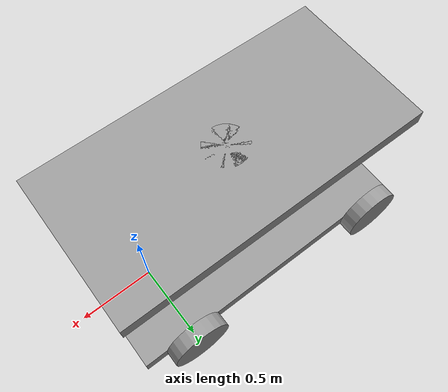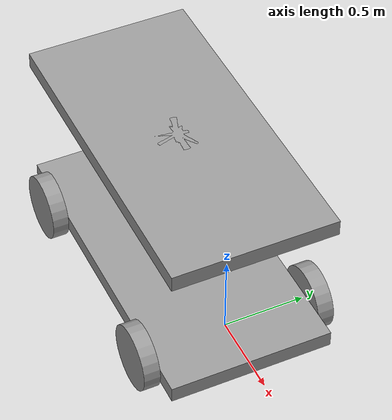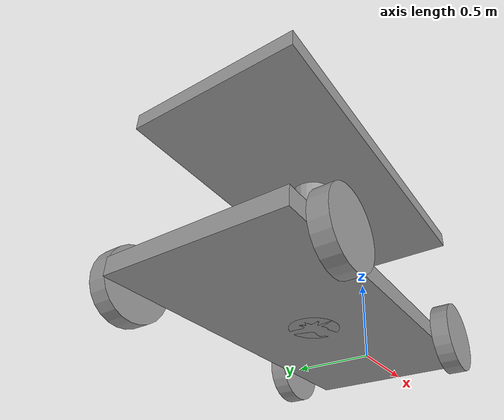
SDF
<?xml version='1.0'?>
<sdf version='1.6'>
  <model name='myRobot'>
    <link name='link_2'>
      <inertial>
        <mass>1</mass>
        <inertia>
          <ixx>0.166667</ixx>
          <ixy>0</ixy>
          <ixz>0</ixz>
          <iyy>0.166667</iyy>
          <iyz>0</iyz>
          <izz>0.166667</izz>
        </inertia>
        <pose frame=''>0 0 0.2 0 -0 0</pose>
      </inertial>
      <pose frame=''>-0.650389 0 0 0 -0 0</pose>
      <gravity>1</gravity>
      <self_collide>0</self_collide>
      <kinematic>0</kinematic>
      <enable_wind>0</enable_wind>
      <visual name='visual'>
        <pose frame=''>0 0 0 0 -0 0</pose>
        <geometry>
          <box>
            <size>2 1 0.1</size>
          </box>
        </geometry>
        <material>
          <lighting>1</lighting>
          <script>
            <uri>file://media/materials/scripts/gazebo.material</uri>
            <name>Gazebo/Grey</name>
          </script>
          <shader type='pixel'>
            <normal_map>__default__</normal_map>
          </shader>
          <ambient>0.3 0.3 0.3 1</ambient>
          <diffuse>0.7 0.7 0.7 1</diffuse>
          <specular>0.01 0.01 0.01 1</specular>
          <emissive>0 0 0 1</emissive>
        </material>
        <transparency>0</transparency>
        <cast_shadows>1</cast_shadows>
      </visual>
      <collision name='collision'>
        <laser_retro>0</laser_retro>
        <max_contacts>10</max_contacts>
        <pose frame=''>0 0 0 0 -0 0</pose>
        <geometry>
          <box>
            <size>2 1 0.1</size>
          </box>
        </geometry>
        <surface>
          <friction>
            <ode>
              <mu>1</mu>
              <mu2>1</mu2>
              <fdir1>0 0 0</fdir1>
              <slip1>0</slip1>
              <slip2>0</slip2>
            </ode>
            <torsional>
              <coefficient>1</coefficient>
              <patch_radius>0</patch_radius>
              <surface_radius>0</surface_radius>
              <use_patch_radius>1</use_patch_radius>
              <ode>
                <slip>0</slip>
              </ode>
            </torsional>
          </friction>
          <bounce>
            <restitution_coefficient>0</restitution_coefficient>
            <threshold>1e+06</threshold>
          </bounce>
          <contact>
            <collide_without_contact>0</collide_without_contact>
            <collide_without_contact_bitmask>1</collide_without_contact_bitmask>
            <collide_bitmask>1</collide_bitmask>
            <ode>
              <soft_cfm>0</soft_cfm>
              <soft_erp>0.2</soft_erp>
              <kp>1e+13</kp>
              <kd>1</kd>
              <max_vel>0.01</max_vel>
              <min_depth>0</min_depth>
            </ode>
            <bullet>
              <split_impulse>1</split_impulse>
              <split_impulse_penetration_threshold>-0.01</split_impulse_penetration_threshold>
              <soft_cfm>0</soft_cfm>
              <soft_erp>0.2</soft_erp>
              <kp>1e+13</kp>
              <kd>1</kd>
            </bullet>
          </contact>
        </surface>
      </collision>
    </link>
    <link name='link_2_0'>
      <inertial>
        <mass>1</mass>
        <inertia>
          <ixx>0.145833</ixx>
          <ixy>0</ixy>
          <ixz>0</ixz>
          <iyy>0.145833</iyy>
          <iyz>0</iyz>
          <izz>0.125</izz>
        </inertia>
        <pose frame=''>0 0 0 0 -0 0</pose>
      </inertial>
      <pose frame=''>-0.650389 0 0.45 0 -0 0</pose>
      <gravity>1</gravity>
      <self_collide>0</self_collide>
      <kinematic>0</kinematic>
      <enable_wind>0</enable_wind>
      <visual name='visual'>
        <pose frame=''>0 0 0 0 -0 0</pose>
        <geometry>
          <cylinder>
            <radius>0.14</radius>
            <length>1</length>
          </cylinder>
        </geometry>
        <material>
          <lighting>1</lighting>
          <script>
            <uri>file://media/materials/scripts/gazebo.material</uri>
            <name>Gazebo/Grey</name>
          </script>
          <shader type='pixel'>
            <normal_map>__default__</normal_map>
          </shader>
          <ambient>0.3 0.3 0.3 1</ambient>
          <diffuse>0.7 0.7 0.7 1</diffuse>
          <specular>0.01 0.01 0.01 1</specular>
          <emissive>0 0 0 1</emissive>
        </material>
        <transparency>0</transparency>
        <cast_shadows>1</cast_shadows>
      </visual>
      <collision name='collision'>
        <laser_retro>0</laser_retro>
        <max_contacts>10</max_contacts>
        <pose frame=''>0 0 0 0 -0 0</pose>
        <geometry>
          <cylinder>
            <radius>0.14</radius>
            <length>1</length>
          </cylinder>
        </geometry>
        <surface>
          <friction>
            <ode>
              <mu>1</mu>
              <mu2>1</mu2>
              <fdir1>0 0 0</fdir1>
              <slip1>0</slip1>
              <slip2>0</slip2>
            </ode>
            <torsional>
              <coefficient>1</coefficient>
              <patch_radius>0</patch_radius>
              <surface_radius>0</surface_radius>
              <use_patch_radius>1</use_patch_radius>
              <ode>
                <slip>0</slip>
              </ode>
            </torsional>
          </friction>
          <bounce>
            <restitution_coefficient>0</restitution_coefficient>
            <threshold>1e+06</threshold>
          </bounce>
          <contact>
            <collide_without_contact>0</collide_without_contact>
            <collide_without_contact_bitmask>1</collide_without_contact_bitmask>
            <collide_bitmask>1</collide_bitmask>
            <ode>
              <soft_cfm>0</soft_cfm>
              <soft_erp>0.2</soft_erp>
              <kp>1e+13</kp>
              <kd>1</kd>
              <max_vel>0.01</max_vel>
              <min_depth>0</min_depth>
            </ode>
            <bullet>
              <split_impulse>1</split_impulse>
              <split_impulse_penetration_threshold>-0.01</split_impulse_penetration_threshold>
              <soft_cfm>0</soft_cfm>
              <soft_erp>0.2</soft_erp>
              <kp>1e+13</kp>
              <kd>1</kd>
            </bullet>
          </contact>
        </surface>
      </collision>
    </link>
    <link name='link_2_clone'>
      <inertial>
        <mass>1</mass>
        <inertia>
          <ixx>0.166667</ixx>
          <ixy>0</ixy>
          <ixz>0</ixz>
          <iyy>0.166667</iyy>
          <iyz>0</iyz>
          <izz>0.166667</izz>
        </inertia>
        <pose frame=''>0 0 0.2 0 -0 0</pose>
      </inertial>
      <pose frame=''>-0.650389 0 0.9 0 -0 0</pose>
      <gravity>1</gravity>
      <self_collide>0</self_collide>
      <kinematic>0</kinematic>
      <enable_wind>0</enable_wind>
      <visual name='visual'>
        <pose frame=''>0 0 0 0 -0 0</pose>
        <geometry>
          <box>
            <size>2 1 0.1</size>
          </box>
        </geometry>
        <material>
          <lighting>1</lighting>
          <script>
            <uri>file://media/materials/scripts/gazebo.material</uri>
            <name>Gazebo/Grey</name>
          </script>
          <shader type='pixel'>
            <normal_map>__default__</normal_map>
          </shader>
          <ambient>0.3 0.3 0.3 1</ambient>
          <diffuse>0.7 0.7 0.7 1</diffuse>
          <specular>0.01 0.01 0.01 1</specular>
          <emissive>0 0 0 1</emissive>
        </material>
        <transparency>0</transparency>
        <cast_shadows>1</cast_shadows>
      </visual>
      <collision name='collision'>
        <laser_retro>0</laser_retro>
        <max_contacts>10</max_contacts>
        <pose frame=''>0 0 0 0 -0 0</pose>
        <geometry>
          <box>
            <size>2 1 0.1</size>
          </box>
        </geometry>
        <surface>
          <friction>
            <ode>
              <mu>1</mu>
              <mu2>1</mu2>
              <fdir1>0 0 0</fdir1>
              <slip1>0</slip1>
              <slip2>0</slip2>
            </ode>
            <torsional>
              <coefficient>1</coefficient>
              <patch_radius>0</patch_radius>
              <surface_radius>0</surface_radius>
              <use_patch_radius>1</use_patch_radius>
              <ode>
                <slip>0</slip>
              </ode>
            </torsional>
          </friction>
          <bounce>
            <restitution_coefficient>0</restitution_coefficient>
            <threshold>1e+06</threshold>
          </bounce>
          <contact>
            <collide_without_contact>0</collide_without_contact>
            <collide_without_contact_bitmask>1</collide_without_contact_bitmask>
            <collide_bitmask>1</collide_bitmask>
            <ode>
              <soft_cfm>0</soft_cfm>
              <soft_erp>0.2</soft_erp>
              <kp>1e+13</kp>
              <kd>1</kd>
              <max_vel>0.01</max_vel>
              <min_depth>0</min_depth>
            </ode>
            <bullet>
              <split_impulse>1</split_impulse>
              <split_impulse_penetration_threshold>-0.01</split_impulse_penetration_threshold>
              <soft_cfm>0</soft_cfm>
              <soft_erp>0.2</soft_erp>
              <kp>1e+13</kp>
              <kd>1</kd>
            </bullet>
          </contact>
        </surface>
      </collision>
    </link>
    <link name='link_3'>
      <inertial>
        <mass>1</mass>
        <inertia>
          <ixx>0.145833</ixx>
          <ixy>0</ixy>
          <ixz>0</ixz>
          <iyy>0.145833</iyy>
          <iyz>0</iyz>
          <izz>0.125</izz>
        </inertia>
        <pose frame=''>0 0 0 0 -0 0</pose>
      </inertial>
      <pose frame=''>0 -0.550019 -0 1.5707 -0 0</pose>
      <gravity>1</gravity>
      <self_collide>0</self_collide>
      <kinematic>0</kinematic>
      <enable_wind>0</enable_wind>
      <visual name='visual'>
        <pose frame=''>0 0 0 0 -0 0</pose>
        <geometry>
          <cylinder>
            <radius>0.2</radius>
            <length>0.1</length>
          </cylinder>
        </geometry>
        <material>
          <lighting>1</lighting>
          <script>
            <uri>file://media/materials/scripts/gazebo.material</uri>
            <name>Gazebo/Grey</name>
          </script>
          <shader type='pixel'>
            <normal_map>__default__</normal_map>
          </shader>
          <ambient>0.3 0.3 0.3 1</ambient>
          <diffuse>0.7 0.7 0.7 1</diffuse>
          <specular>0.01 0.01 0.01 1</specular>
          <emissive>0 0 0 1</emissive>
        </material>
        <transparency>0</transparency>
        <cast_shadows>1</cast_shadows>
      </visual>
      <collision name='collision'>
        <laser_retro>0</laser_retro>
        <max_contacts>10</max_contacts>
        <pose frame=''>0 0 0 0 -0 0</pose>
        <geometry>
          <cylinder>
            <radius>0.2</radius>
            <length>0.1</length>
          </cylinder>
        </geometry>
        <surface>
          <friction>
            <ode>
              <mu>1</mu>
              <mu2>1</mu2>
              <fdir1>0 0 0</fdir1>
              <slip1>0</slip1>
              <slip2>0</slip2>
            </ode>
            <torsional>
              <coefficient>1</coefficient>
              <patch_radius>0</patch_radius>
              <surface_radius>0</surface_radius>
              <use_patch_radius>1</use_patch_radius>
              <ode>
                <slip>0</slip>
              </ode>
            </torsional>
          </friction>
          <bounce>
            <restitution_coefficient>0</restitution_coefficient>
            <threshold>1e+06</threshold>
          </bounce>
          <contact>
            <collide_without_contact>0</collide_without_contact>
            <collide_without_contact_bitmask>1</collide_without_contact_bitmask>
            <collide_bitmask>1</collide_bitmask>
            <ode>
              <soft_cfm>0</soft_cfm>
              <soft_erp>0.2</soft_erp>
              <kp>1e+13</kp>
              <kd>1</kd>
              <max_vel>0.01</max_vel>
              <min_depth>0</min_depth>
            </ode>
            <bullet>
              <split_impulse>1</split_impulse>
              <split_impulse_penetration_threshold>-0.01</split_impulse_penetration_threshold>
              <soft_cfm>0</soft_cfm>
              <soft_erp>0.2</soft_erp>
              <kp>1e+13</kp>
              <kd>1</kd>
            </bullet>
          </contact>
        </surface>
      </collision>
    </link>
    <link name='link_3_clone'>
      <inertial>
        <mass>1</mass>
        <inertia>
          <ixx>0.145833</ixx>
          <ixy>0</ixy>
          <ixz>0</ixz>
          <iyy>0.145833</iyy>
          <iyz>0</iyz>
          <izz>0.125</izz>
        </inertia>
        <pose frame=''>0 0 0 0 -0 0</pose>
      </inertial>
      <pose frame=''>0 0.550019 0 1.5707 -0 0</pose>
      <gravity>1</gravity>
      <self_collide>0</self_collide>
      <kinematic>0</kinematic>
      <enable_wind>0</enable_wind>
      <visual name='visual'>
        <pose frame=''>0 0 0 0 -0 0</pose>
        <geometry>
          <cylinder>
            <radius>0.2</radius>
            <length>0.1</length>
          </cylinder>
        </geometry>
        <material>
          <lighting>1</lighting>
          <script>
            <uri>file://media/materials/scripts/gazebo.material</uri>
            <name>Gazebo/Grey</name>
          </script>
          <shader type='pixel'>
            <normal_map>__default__</normal_map>
          </shader>
          <ambient>0.3 0.3 0.3 1</ambient>
          <diffuse>0.7 0.7 0.7 1</diffuse>
          <specular>0.01 0.01 0.01 1</specular>
          <emissive>0 0 0 1</emissive>
        </material>
        <transparency>0</transparency>
        <cast_shadows>1</cast_shadows>
      </visual>
      <collision name='collision'>
        <laser_retro>0</laser_retro>
        <max_contacts>10</max_contacts>
        <pose frame=''>0 0 0 0 -0 0</pose>
        <geometry>
          <cylinder>
            <radius>0.2</radius>
            <length>0.1</length>
          </cylinder>
        </geometry>
        <surface>
          <friction>
            <ode>
              <mu>1</mu>
              <mu2>1</mu2>
              <fdir1>0 0 0</fdir1>
              <slip1>0</slip1>
              <slip2>0</slip2>
            </ode>
            <torsional>
              <coefficient>1</coefficient>
              <patch_radius>0</patch_radius>
              <surface_radius>0</surface_radius>
              <use_patch_radius>1</use_patch_radius>
              <ode>
                <slip>0</slip>
              </ode>
            </torsional>
          </friction>
          <bounce>
            <restitution_coefficient>0</restitution_coefficient>
            <threshold>1e+06</threshold>
          </bounce>
          <contact>
            <collide_without_contact>0</collide_without_contact>
            <collide_without_contact_bitmask>1</collide_without_contact_bitmask>
            <collide_bitmask>1</collide_bitmask>
            <ode>
              <soft_cfm>0</soft_cfm>
              <soft_erp>0.2</soft_erp>
              <kp>1e+13</kp>
              <kd>1</kd>
              <max_vel>0.01</max_vel>
              <min_depth>0</min_depth>
            </ode>
            <bullet>
              <split_impulse>1</split_impulse>
              <split_impulse_penetration_threshold>-0.01</split_impulse_penetration_threshold>
              <soft_cfm>0</soft_cfm>
              <soft_erp>0.2</soft_erp>
              <kp>1e+13</kp>
              <kd>1</kd>
            </bullet>
          </contact>
        </surface>
      </collision>
    </link>
    <link name='link_3_clone_0'>
      <inertial>
        <mass>1</mass>
        <inertia>
          <ixx>0.145833</ixx>
          <ixy>0</ixy>
          <ixz>0</ixz>
          <iyy>0.145833</iyy>
          <iyz>0</iyz>
          <izz>0.125</izz>
        </inertia>
        <pose frame=''>0 0 0 0 -0 0</pose>
      </inertial>
      <pose frame=''>-1.33712 -0.550019 0 1.5707 -0 0</pose>
      <gravity>1</gravity>
      <self_collide>0</self_collide>
      <kinematic>0</kinematic>
      <enable_wind>0</enable_wind>
      <visual name='visual'>
        <pose frame=''>0 0 0 0 -0 0</pose>
        <geometry>
          <cylinder>
            <radius>0.2</radius>
            <length>0.1</length>
          </cylinder>
        </geometry>
        <material>
          <lighting>1</lighting>
          <script>
            <uri>file://media/materials/scripts/gazebo.material</uri>
            <name>Gazebo/Grey</name>
          </script>
          <shader type='pixel'>
            <normal_map>__default__</normal_map>
          </shader>
          <ambient>0.3 0.3 0.3 1</ambient>
          <diffuse>0.7 0.7 0.7 1</diffuse>
          <specular>0.01 0.01 0.01 1</specular>
          <emissive>0 0 0 1</emissive>
        </material>
        <transparency>0</transparency>
        <cast_shadows>1</cast_shadows>
      </visual>
      <collision name='collision'>
        <laser_retro>0</laser_retro>
        <max_contacts>10</max_contacts>
        <pose frame=''>0 0 0 0 -0 0</pose>
        <geometry>
          <cylinder>
            <radius>0.2</radius>
            <length>0.1</length>
          </cylinder>
        </geometry>
        <surface>
          <friction>
            <ode>
              <mu>1</mu>
              <mu2>1</mu2>
              <fdir1>0 0 0</fdir1>
              <slip1>0</slip1>
              <slip2>0</slip2>
            </ode>
            <torsional>
              <coefficient>1</coefficient>
              <patch_radius>0</patch_radius>
              <surface_radius>0</surface_radius>
              <use_patch_radius>1</use_patch_radius>
              <ode>
                <slip>0</slip>
              </ode>
            </torsional>
          </friction>
          <bounce>
            <restitution_coefficient>0</restitution_coefficient>
            <threshold>1e+06</threshold>
          </bounce>
          <contact>
            <collide_without_contact>0</collide_without_contact>
            <collide_without_contact_bitmask>1</collide_without_contact_bitmask>
            <collide_bitmask>1</collide_bitmask>
            <ode>
              <soft_cfm>0</soft_cfm>
              <soft_erp>0.2</soft_erp>
              <kp>1e+13</kp>
              <kd>1</kd>
              <max_vel>0.01</max_vel>
              <min_depth>0</min_depth>
            </ode>
            <bullet>
              <split_impulse>1</split_impulse>
              <split_impulse_penetration_threshold>-0.01</split_impulse_penetration_threshold>
              <soft_cfm>0</soft_cfm>
              <soft_erp>0.2</soft_erp>
              <kp>1e+13</kp>
              <kd>1</kd>
            </bullet>
          </contact>
        </surface>
      </collision>
    </link>
    <link name='link_3_clone_1'>
      <inertial>
        <mass>1</mass>
        <inertia>
          <ixx>0.145833</ixx>
          <ixy>0</ixy>
          <ixz>0</ixz>
          <iyy>0.145833</iyy>
          <iyz>0</iyz>
          <izz>0.125</izz>
        </inertia>
        <pose frame=''>0 0 0 0 -0 0</pose>
      </inertial>
      <pose frame=''>-1.45039 0.550019 -0 1.5707 -0 0</pose>
      <gravity>1</gravity>
      <self_collide>0</self_collide>
      <kinematic>0</kinematic>
      <enable_wind>0</enable_wind>
      <visual name='visual'>
        <pose frame=''>0 0 0 0 -0 0</pose>
        <geometry>
          <cylinder>
            <radius>0.2</radius>
            <length>0.1</length>
          </cylinder>
        </geometry>
        <material>
          <lighting>1</lighting>
          <script>
            <uri>file://media/materials/scripts/gazebo.material</uri>
            <name>Gazebo/Grey</name>
          </script>
          <shader type='pixel'>
            <normal_map>__default__</normal_map>
          </shader>
          <ambient>0.3 0.3 0.3 1</ambient>
          <diffuse>0.7 0.7 0.7 1</diffuse>
          <specular>0.01 0.01 0.01 1</specular>
          <emissive>0 0 0 1</emissive>
        </material>
        <transparency>0</transparency>
        <cast_shadows>1</cast_shadows>
      </visual>
      <collision name='collision'>
        <laser_retro>0</laser_retro>
        <max_contacts>10</max_contacts>
        <pose frame=''>0 0 0 0 -0 0</pose>
        <geometry>
          <cylinder>
            <radius>0.2</radius>
            <length>0.1</length>
          </cylinder>
        </geometry>
        <surface>
          <friction>
            <ode>
              <mu>1</mu>
              <mu2>1</mu2>
              <fdir1>0 0 0</fdir1>
              <slip1>0</slip1>
              <slip2>0</slip2>
            </ode>
            <torsional>
              <coefficient>1</coefficient>
              <patch_radius>0</patch_radius>
              <surface_radius>0</surface_radius>
              <use_patch_radius>1</use_patch_radius>
              <ode>
                <slip>0</slip>
              </ode>
            </torsional>
          </friction>
          <bounce>
            <restitution_coefficient>0</restitution_coefficient>
            <threshold>1e+06</threshold>
          </bounce>
          <contact>
            <collide_without_contact>0</collide_without_contact>
            <collide_without_contact_bitmask>1</collide_without_contact_bitmask>
            <collide_bitmask>1</collide_bitmask>
            <ode>
              <soft_cfm>0</soft_cfm>
              <soft_erp>0.2</soft_erp>
              <kp>1e+13</kp>
              <kd>1</kd>
              <max_vel>0.01</max_vel>
              <min_depth>0</min_depth>
            </ode>
            <bullet>
              <split_impulse>1</split_impulse>
              <split_impulse_penetration_threshold>-0.01</split_impulse_penetration_threshold>
              <soft_cfm>0</soft_cfm>
              <soft_erp>0.2</soft_erp>
              <kp>1e+13</kp>
              <kd>1</kd>
            </bullet>
          </contact>
        </surface>
      </collision>
    </link>
    <joint name='link_2_0_JOINT_3' type='fixed'>
      <parent>link_2_0</parent>
      <child>link_2_clone</child>
      <pose frame=''>0 0 0 0 -0 0</pose>
      <physics>
        <ode>
          <limit>
            <cfm>0</cfm>
            <erp>0.2</erp>
          </limit>
          <suspension>
            <cfm>0</cfm>
            <erp>0.2</erp>
          </suspension>
        </ode>
      </physics>
    </joint>
    <joint name='link_2_JOINT_0' type='revolute'>
      <parent>link_2</parent>
      <child>link_3_clone_0</child>
      <pose frame=''>0 0 0 0 -0 0</pose>
      <axis>
        <xyz>1 0 0</xyz>
        <use_parent_model_frame>0</use_parent_model_frame>
        <limit>
          <lower>-1.79769e+308</lower>
          <upper>1.79769e+308</upper>
          <effort>-1</effort>
          <velocity>-1</velocity>
        </limit>
        <dynamics>
          <spring_reference>0</spring_reference>
          <spring_stiffness>0</spring_stiffness>
          <damping>0</damping>
        </dynamics>
      </axis>
      <physics>
        <ode>
          <limit>
            <cfm>0</cfm>
            <erp>0.2</erp>
          </limit>
          <suspension>
            <cfm>0</cfm>
            <erp>0.2</erp>
          </suspension>
        </ode>
      </physics>
    </joint>
    <joint name='link_2_JOINT_1' type='revolute'>
      <parent>link_2</parent>
      <child>link_3_clone_1</child>
      <pose frame=''>0 0 0 0 -0 0</pose>
      <axis>
        <xyz>1 0 0</xyz>
        <use_parent_model_frame>0</use_parent_model_frame>
        <limit>
          <lower>-1.79769e+308</lower>
          <upper>1.79769e+308</upper>
          <effort>-1</effort>
          <velocity>-1</velocity>
        </limit>
        <dynamics>
          <spring_reference>0</spring_reference>
          <spring_stiffness>0</spring_stiffness>
          <damping>0</damping>
        </dynamics>
      </axis>
      <physics>
        <ode>
          <limit>
            <cfm>0</cfm>
            <erp>0.2</erp>
          </limit>
          <suspension>
            <cfm>0</cfm>
            <erp>0.2</erp>
          </suspension>
        </ode>
      </physics>
    </joint>
    <joint name='link_2_JOINT_2' type='revolute'>
      <parent>link_2</parent>
      <child>link_3</child>
      <pose frame=''>0 0 0 0 -0 0</pose>
      <axis>
        <xyz>0 0 1</xyz>
        <use_parent_model_frame>0</use_parent_model_frame>
        <limit>
          <lower>-1.79769e+308</lower>
          <upper>1.79769e+308</upper>
          <effort>-1</effort>
          <velocity>-1</velocity>
        </limit>
        <dynamics>
          <spring_reference>0</spring_reference>
          <spring_stiffness>0</spring_stiffness>
          <damping>0</damping>
          <friction>0</friction>
        </dynamics>
      </axis>
      <physics>
        <ode>
          <limit>
            <cfm>0</cfm>
            <erp>0.2</erp>
          </limit>
          <suspension>
            <cfm>0</cfm>
            <erp>0.2</erp>
          </suspension>
        </ode>
      </physics>
    </joint>
    <joint name='link_2_JOINT_3' type='revolute'>
      <parent>link_2</parent>
      <child>link_3_clone</child>
      <pose frame=''>0 0 0 0 -0 0</pose>
      <axis>
        <xyz>0 0 1</xyz>
        <use_parent_model_frame>0</use_parent_model_frame>
        <limit>
          <lower>-1.79769e+308</lower>
          <upper>1.79769e+308</upper>
          <effort>-1</effort>
          <velocity>-1</velocity>
        </limit>
        <dynamics>
          <spring_reference>0</spring_reference>
          <spring_stiffness>0</spring_stiffness>
          <damping>0</damping>
          <friction>0</friction>
        </dynamics>
      </axis>
      <physics>
        <ode>
          <limit>
            <cfm>0</cfm>
            <erp>0.2</erp>
          </limit>
          <suspension>
            <cfm>0</cfm>
            <erp>0.2</erp>
          </suspension>
        </ode>
      </physics>
    </joint>
    <static>0</static>
    <allow_auto_disable>1</allow_auto_disable>
  </model>
</sdf>
